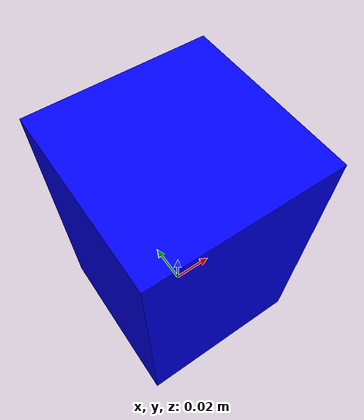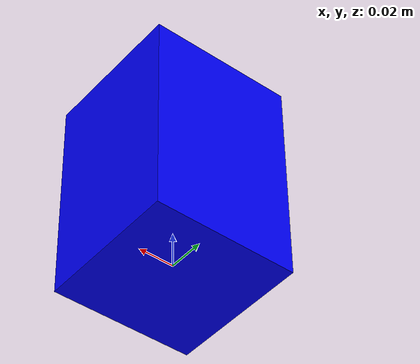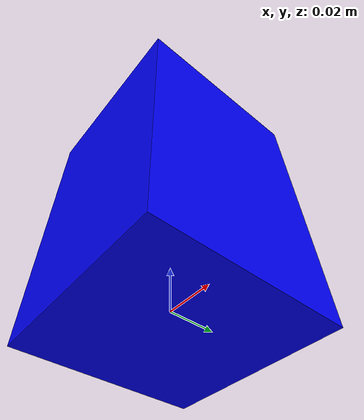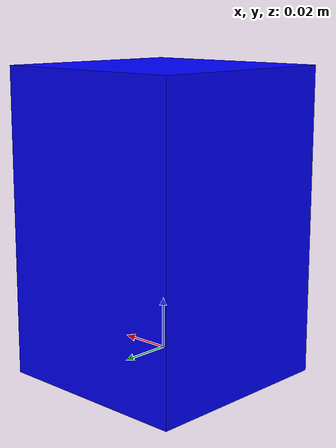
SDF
<?xml version="1.0"?>
<sdf version="1.6">
  <model name="test_prism">
    <pose>0 0 0.05 0 0 0</pose>
    <static>true</static>
    <link name="link">
      <collision name="collision">
        <geometry>
          <box>
            <size>0.08 0.08 0.12</size>
          </box>
        </geometry>
      </collision>
      <visual name="visual">
        <geometry>
          <box>
            <size>0.08 0.08 0.12</size>
          </box>
        </geometry>
        <material>
          <ambient>0 0 1 1</ambient>
          <diffuse>0 0 1 1</diffuse>
          <specular>0.1 0.1 0.1 1</specular>
        </material>
      </visual>
    </link>
  </model>
</sdf>
